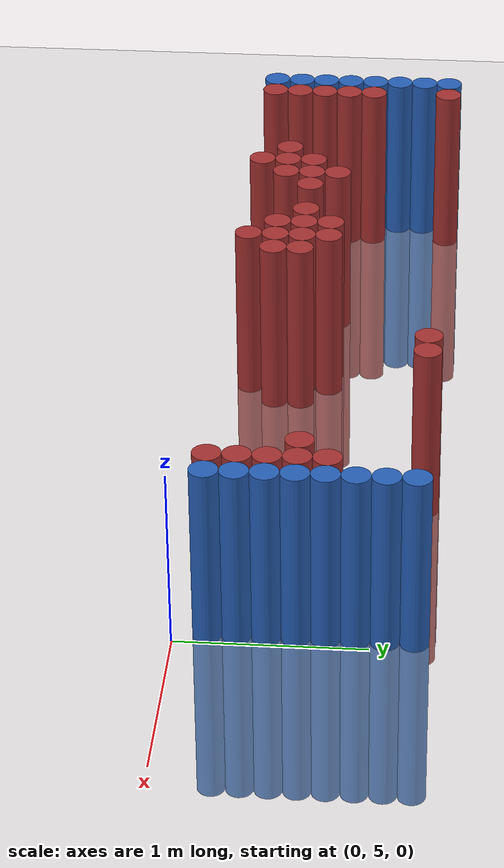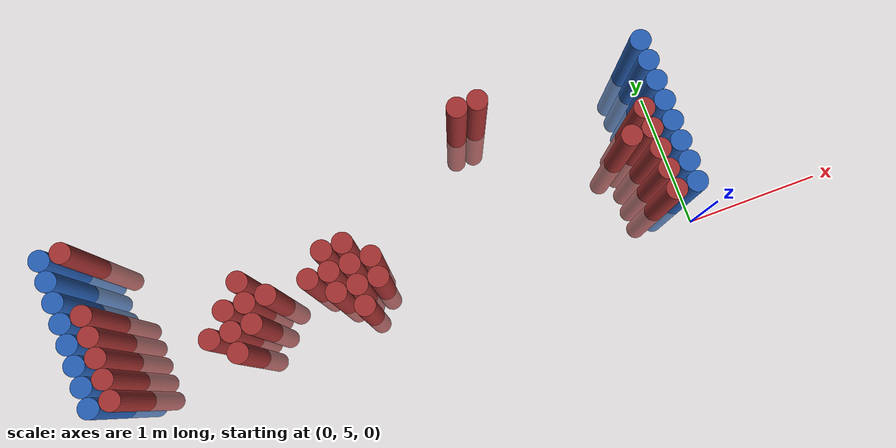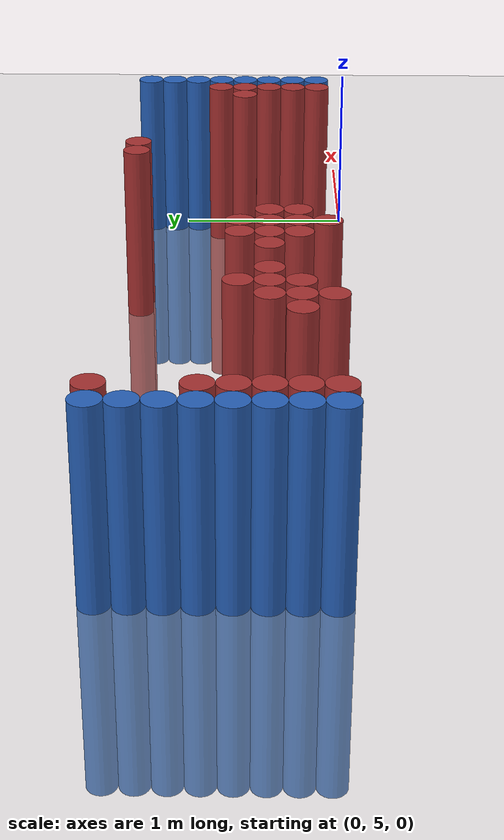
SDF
<sdf version="1.6">
 <world name="default">
  <model name="ground_plane">
   <static>1</static>
   <link name="link">
    <collision name="collision">
     <geometry><plane><normal>0 0 1</normal><size>100 100</size></plane></geometry>
     <surface><friction><ode><mu>100</mu><mu2>50</mu2></ode></friction></surface>
    </collision>
    <visual name="visual">
     <cast_shadows>0</cast_shadows>
     <geometry><plane><normal>0 0 1</normal><size>100 100</size></plane></geometry>
     <material>
      <script><uri>file://media/materials/scripts/gazebo.material</uri><name>Gazebo/Grey</name></script>
     </material>
    </visual>
   </link>
  </model>
  <model name="unit_cylinder_96">
   <static>1</static>
   <pose>-4.425000 5.175000 0.000000 0.000000 0.000000 0.000000</pose>
   <link name="link">
    <inertial>
     <mass>1</mass>
     <inertia><ixx>0.145833</ixx><ixy>0</ixy><ixz>0</ixz><iyy>0.145833</iyy><iyz>0</iyz><izz>0.125</izz></inertia>
    </inertial>
    <collision name="collision">
     <geometry><cylinder><radius>0.075000</radius><length>2</length></cylinder></geometry>
    </collision>
    <visual name="visual">
     <geometry><cylinder><radius>0.075000</radius><length>2</length></cylinder></geometry>
     <material>
      <ambient>0.152000 0.379000 0.720000 1</ambient>
      <diffuse>0.152000 0.379000 0.720000 1</diffuse>
     </material>
     <material>
      <script><name>Gazebo/Grey</name><uri>file://media/materials/scripts/gazebo.material</uri></script>
     </material>
    </visual>
   </link>
  </model>
  <model name="unit_cylinder_97">
   <static>1</static>
   <pose>-4.425000 5.325000 0.000000 0.000000 0.000000 0.000000</pose>
   <link name="link">
    <inertial>
     <mass>1</mass>
     <inertia><ixx>0.145833</ixx><ixy>0</ixy><ixz>0</ixz><iyy>0.145833</iyy><iyz>0</iyz><izz>0.125</izz></inertia>
    </inertial>
    <collision name="collision">
     <geometry><cylinder><radius>0.075000</radius><length>2</length></cylinder></geometry>
    </collision>
    <visual name="visual">
     <geometry><cylinder><radius>0.075000</radius><length>2</length></cylinder></geometry>
     <material>
      <ambient>0.152000 0.379000 0.720000 1</ambient>
      <diffuse>0.152000 0.379000 0.720000 1</diffuse>
     </material>
     <material>
      <script><name>Gazebo/Grey</name><uri>file://media/materials/scripts/gazebo.material</uri></script>
     </material>
    </visual>
   </link>
  </model>
  <model name="unit_cylinder_98">
   <static>1</static>
   <pose>-4.425000 5.475000 0.000000 0.000000 0.000000 0.000000</pose>
   <link name="link">
    <inertial>
     <mass>1</mass>
     <inertia><ixx>0.145833</ixx><ixy>0</ixy><ixz>0</ixz><iyy>0.145833</iyy><iyz>0</iyz><izz>0.125</izz></inertia>
    </inertial>
    <collision name="collision">
     <geometry><cylinder><radius>0.075000</radius><length>2</length></cylinder></geometry>
    </collision>
    <visual name="visual">
     <geometry><cylinder><radius>0.075000</radius><length>2</length></cylinder></geometry>
     <material>
      <ambient>0.152000 0.379000 0.720000 1</ambient>
      <diffuse>0.152000 0.379000 0.720000 1</diffuse>
     </material>
     <material>
      <script><name>Gazebo/Grey</name><uri>file://media/materials/scripts/gazebo.material</uri></script>
     </material>
    </visual>
   </link>
  </model>
  <model name="unit_cylinder_99">
   <static>1</static>
   <pose>-4.425000 5.625000 0.000000 0.000000 0.000000 0.000000</pose>
   <link name="link">
    <inertial>
     <mass>1</mass>
     <inertia><ixx>0.145833</ixx><ixy>0</ixy><ixz>0</ixz><iyy>0.145833</iyy><iyz>0</iyz><izz>0.125</izz></inertia>
    </inertial>
    <collision name="collision">
     <geometry><cylinder><radius>0.075000</radius><length>2</length></cylinder></geometry>
    </collision>
    <visual name="visual">
     <geometry><cylinder><radius>0.075000</radius><length>2</length></cylinder></geometry>
     <material>
      <ambient>0.152000 0.379000 0.720000 1</ambient>
      <diffuse>0.152000 0.379000 0.720000 1</diffuse>
     </material>
     <material>
      <script><name>Gazebo/Grey</name><uri>file://media/materials/scripts/gazebo.material</uri></script>
     </material>
    </visual>
   </link>
  </model>
  <model name="unit_cylinder_100">
   <static>1</static>
   <pose>-4.425000 5.775000 0.000000 0.000000 0.000000 0.000000</pose>
   <link name="link">
    <inertial>
     <mass>1</mass>
     <inertia><ixx>0.145833</ixx><ixy>0</ixy><ixz>0</ixz><iyy>0.145833</iyy><iyz>0</iyz><izz>0.125</izz></inertia>
    </inertial>
    <collision name="collision">
     <geometry><cylinder><radius>0.075000</radius><length>2</length></cylinder></geometry>
    </collision>
    <visual name="visual">
     <geometry><cylinder><radius>0.075000</radius><length>2</length></cylinder></geometry>
     <material>
      <ambient>0.152000 0.379000 0.720000 1</ambient>
      <diffuse>0.152000 0.379000 0.720000 1</diffuse>
     </material>
     <material>
      <script><name>Gazebo/Grey</name><uri>file://media/materials/scripts/gazebo.material</uri></script>
     </material>
    </visual>
   </link>
  </model>
  <model name="unit_cylinder_101">
   <static>1</static>
   <pose>-4.425000 5.925000 0.000000 0.000000 0.000000 0.000000</pose>
   <link name="link">
    <inertial>
     <mass>1</mass>
     <inertia><ixx>0.145833</ixx><ixy>0</ixy><ixz>0</ixz><iyy>0.145833</iyy><iyz>0</iyz><izz>0.125</izz></inertia>
    </inertial>
    <collision name="collision">
     <geometry><cylinder><radius>0.075000</radius><length>2</length></cylinder></geometry>
    </collision>
    <visual name="visual">
     <geometry><cylinder><radius>0.075000</radius><length>2</length></cylinder></geometry>
     <material>
      <ambient>0.152000 0.379000 0.720000 1</ambient>
      <diffuse>0.152000 0.379000 0.720000 1</diffuse>
     </material>
     <material>
      <script><name>Gazebo/Grey</name><uri>file://media/materials/scripts/gazebo.material</uri></script>
     </material>
    </visual>
   </link>
  </model>
  <model name="unit_cylinder_102">
   <static>1</static>
   <pose>-4.425000 6.075000 0.000000 0.000000 0.000000 0.000000</pose>
   <link name="link">
    <inertial>
     <mass>1</mass>
     <inertia><ixx>0.145833</ixx><ixy>0</ixy><ixz>0</ixz><iyy>0.145833</iyy><iyz>0</iyz><izz>0.125</izz></inertia>
    </inertial>
    <collision name="collision">
     <geometry><cylinder><radius>0.075000</radius><length>2</length></cylinder></geometry>
    </collision>
    <visual name="visual">
     <geometry><cylinder><radius>0.075000</radius><length>2</length></cylinder></geometry>
     <material>
      <ambient>0.152000 0.379000 0.720000 1</ambient>
      <diffuse>0.152000 0.379000 0.720000 1</diffuse>
     </material>
     <material>
      <script><name>Gazebo/Grey</name><uri>file://media/materials/scripts/gazebo.material</uri></script>
     </material>
    </visual>
   </link>
  </model>
  <model name="unit_cylinder_103">
   <static>1</static>
   <pose>-4.425000 6.225000 0.000000 0.000000 0.000000 0.000000</pose>
   <link name="link">
    <inertial>
     <mass>1</mass>
     <inertia><ixx>0.145833</ixx><ixy>0</ixy><ixz>0</ixz><iyy>0.145833</iyy><iyz>0</iyz><izz>0.125</izz></inertia>
    </inertial>
    <collision name="collision">
     <geometry><cylinder><radius>0.075000</radius><length>2</length></cylinder></geometry>
    </collision>
    <visual name="visual">
     <geometry><cylinder><radius>0.075000</radius><length>2</length></cylinder></geometry>
     <material>
      <ambient>0.152000 0.379000 0.720000 1</ambient>
      <diffuse>0.152000 0.379000 0.720000 1</diffuse>
     </material>
     <material>
      <script><name>Gazebo/Grey</name><uri>file://media/materials/scripts/gazebo.material</uri></script>
     </material>
    </visual>
   </link>
  </model>
  <model name="unit_cylinder_126">
   <static>1</static>
   <pose>-4.275000 5.175000 0.000000 0.000000 0.000000 0.000000</pose>
   <link name="link">
    <inertial>
     <mass>1</mass>
     <inertia><ixx>0.145833</ixx><ixy>0</ixy><ixz>0</ixz><iyy>0.145833</iyy><iyz>0</iyz><izz>0.125</izz></inertia>
    </inertial>
    <collision name="collision">
     <geometry><cylinder><radius>0.075000</radius><length>2</length></cylinder></geometry>
    </collision>
    <visual name="visual">
     <geometry><cylinder><radius>0.075000</radius><length>2</length></cylinder></geometry>
     <material>
      <ambient>0.648000 0.192000 0.192000 1</ambient>
      <diffuse>0.648000 0.192000 0.192000 1</diffuse>
     </material>
     <material>
      <script><name>Gazebo/Grey</name><uri>file://media/materials/scripts/gazebo.material</uri></script>
     </material>
    </visual>
   </link>
  </model>
  <model name="unit_cylinder_127">
   <static>1</static>
   <pose>-4.275000 5.325000 0.000000 0.000000 0.000000 0.000000</pose>
   <link name="link">
    <inertial>
     <mass>1</mass>
     <inertia><ixx>0.145833</ixx><ixy>0</ixy><ixz>0</ixz><iyy>0.145833</iyy><iyz>0</iyz><izz>0.125</izz></inertia>
    </inertial>
    <collision name="collision">
     <geometry><cylinder><radius>0.075000</radius><length>2</length></cylinder></geometry>
    </collision>
    <visual name="visual">
     <geometry><cylinder><radius>0.075000</radius><length>2</length></cylinder></geometry>
     <material>
      <ambient>0.648000 0.192000 0.192000 1</ambient>
      <diffuse>0.648000 0.192000 0.192000 1</diffuse>
     </material>
     <material>
      <script><name>Gazebo/Grey</name><uri>file://media/materials/scripts/gazebo.material</uri></script>
     </material>
    </visual>
   </link>
  </model>
  <model name="unit_cylinder_128">
   <static>1</static>
   <pose>-4.275000 5.475000 0.000000 0.000000 0.000000 0.000000</pose>
   <link name="link">
    <inertial>
     <mass>1</mass>
     <inertia><ixx>0.145833</ixx><ixy>0</ixy><ixz>0</ixz><iyy>0.145833</iyy><iyz>0</iyz><izz>0.125</izz></inertia>
    </inertial>
    <collision name="collision">
     <geometry><cylinder><radius>0.075000</radius><length>2</length></cylinder></geometry>
    </collision>
    <visual name="visual">
     <geometry><cylinder><radius>0.075000</radius><length>2</length></cylinder></geometry>
     <material>
      <ambient>0.648000 0.192000 0.192000 1</ambient>
      <diffuse>0.648000 0.192000 0.192000 1</diffuse>
     </material>
     <material>
      <script><name>Gazebo/Grey</name><uri>file://media/materials/scripts/gazebo.material</uri></script>
     </material>
    </visual>
   </link>
  </model>
  <model name="unit_cylinder_129">
   <static>1</static>
   <pose>-4.275000 5.625000 0.000000 0.000000 0.000000 0.000000</pose>
   <link name="link">
    <inertial>
     <mass>1</mass>
     <inertia><ixx>0.145833</ixx><ixy>0</ixy><ixz>0</ixz><iyy>0.145833</iyy><iyz>0</iyz><izz>0.125</izz></inertia>
    </inertial>
    <collision name="collision">
     <geometry><cylinder><radius>0.075000</radius><length>2</length></cylinder></geometry>
    </collision>
    <visual name="visual">
     <geometry><cylinder><radius>0.075000</radius><length>2</length></cylinder></geometry>
     <material>
      <ambient>0.648000 0.192000 0.192000 1</ambient>
      <diffuse>0.648000 0.192000 0.192000 1</diffuse>
     </material>
     <material>
      <script><name>Gazebo/Grey</name><uri>file://media/materials/scripts/gazebo.material</uri></script>
     </material>
    </visual>
   </link>
  </model>
  <model name="unit_cylinder_130">
   <static>1</static>
   <pose>-4.275000 5.775000 0.000000 0.000000 0.000000 0.000000</pose>
   <link name="link">
    <inertial>
     <mass>1</mass>
     <inertia><ixx>0.145833</ixx><ixy>0</ixy><ixz>0</ixz><iyy>0.145833</iyy><iyz>0</iyz><izz>0.125</izz></inertia>
    </inertial>
    <collision name="collision">
     <geometry><cylinder><radius>0.075000</radius><length>2</length></cylinder></geometry>
    </collision>
    <visual name="visual">
     <geometry><cylinder><radius>0.075000</radius><length>2</length></cylinder></geometry>
     <material>
      <ambient>0.648000 0.192000 0.192000 1</ambient>
      <diffuse>0.648000 0.192000 0.192000 1</diffuse>
     </material>
     <material>
      <script><name>Gazebo/Grey</name><uri>file://media/materials/scripts/gazebo.material</uri></script>
     </material>
    </visual>
   </link>
  </model>
  <model name="unit_cylinder_131">
   <static>1</static>
   <pose>-4.275000 6.225000 0.000000 0.000000 0.000000 0.000000</pose>
   <link name="link">
    <inertial>
     <mass>1</mass>
     <inertia><ixx>0.145833</ixx><ixy>0</ixy><ixz>0</ixz><iyy>0.145833</iyy><iyz>0</iyz><izz>0.125</izz></inertia>
    </inertial>
    <collision name="collision">
     <geometry><cylinder><radius>0.075000</radius><length>2</length></cylinder></geometry>
    </collision>
    <visual name="visual">
     <geometry><cylinder><radius>0.075000</radius><length>2</length></cylinder></geometry>
     <material>
      <ambient>0.648000 0.192000 0.192000 1</ambient>
      <diffuse>0.648000 0.192000 0.192000 1</diffuse>
     </material>
     <material>
      <script><name>Gazebo/Grey</name><uri>file://media/materials/scripts/gazebo.material</uri></script>
     </material>
    </visual>
   </link>
  </model>
  <model name="unit_cylinder_150">
   <static>1</static>
   <pose>-3.525000 5.325000 0.000000 0.000000 0.000000 0.000000</pose>
   <link name="link">
    <inertial>
     <mass>1</mass>
     <inertia><ixx>0.145833</ixx><ixy>0</ixy><ixz>0</ixz><iyy>0.145833</iyy><iyz>0</iyz><izz>0.125</izz></inertia>
    </inertial>
    <collision name="collision">
     <geometry><cylinder><radius>0.075000</radius><length>2</length></cylinder></geometry>
    </collision>
    <visual name="visual">
     <geometry><cylinder><radius>0.075000</radius><length>2</length></cylinder></geometry>
     <material>
      <ambient>0.648000 0.192000 0.192000 1</ambient>
      <diffuse>0.648000 0.192000 0.192000 1</diffuse>
     </material>
     <material>
      <script><name>Gazebo/Grey</name><uri>file://media/materials/scripts/gazebo.material</uri></script>
     </material>
    </visual>
   </link>
  </model>
  <model name="unit_cylinder_151">
   <static>1</static>
   <pose>-3.375000 5.175000 0.000000 0.000000 0.000000 0.000000</pose>
   <link name="link">
    <inertial>
     <mass>1</mass>
     <inertia><ixx>0.145833</ixx><ixy>0</ixy><ixz>0</ixz><iyy>0.145833</iyy><iyz>0</iyz><izz>0.125</izz></inertia>
    </inertial>
    <collision name="collision">
     <geometry><cylinder><radius>0.075000</radius><length>2</length></cylinder></geometry>
    </collision>
    <visual name="visual">
     <geometry><cylinder><radius>0.075000</radius><length>2</length></cylinder></geometry>
     <material>
      <ambient>0.648000 0.192000 0.192000 1</ambient>
      <diffuse>0.648000 0.192000 0.192000 1</diffuse>
     </material>
     <material>
      <script><name>Gazebo/Grey</name><uri>file://media/materials/scripts/gazebo.material</uri></script>
     </material>
    </visual>
   </link>
  </model>
  <model name="unit_cylinder_152">
   <static>1</static>
   <pose>-3.375000 5.325000 0.000000 0.000000 0.000000 0.000000</pose>
   <link name="link">
    <inertial>
     <mass>1</mass>
     <inertia><ixx>0.145833</ixx><ixy>0</ixy><ixz>0</ixz><iyy>0.145833</iyy><iyz>0</iyz><izz>0.125</izz></inertia>
    </inertial>
    <collision name="collision">
     <geometry><cylinder><radius>0.075000</radius><length>2</length></cylinder></geometry>
    </collision>
    <visual name="visual">
     <geometry><cylinder><radius>0.075000</radius><length>2</length></cylinder></geometry>
     <material>
      <ambient>0.648000 0.192000 0.192000 1</ambient>
      <diffuse>0.648000 0.192000 0.192000 1</diffuse>
     </material>
     <material>
      <script><name>Gazebo/Grey</name><uri>file://media/materials/scripts/gazebo.material</uri></script>
     </material>
    </visual>
   </link>
  </model>
  <model name="unit_cylinder_153">
   <static>1</static>
   <pose>-3.375000 5.475000 0.000000 0.000000 0.000000 0.000000</pose>
   <link name="link">
    <inertial>
     <mass>1</mass>
     <inertia><ixx>0.145833</ixx><ixy>0</ixy><ixz>0</ixz><iyy>0.145833</iyy><iyz>0</iyz><izz>0.125</izz></inertia>
    </inertial>
    <collision name="collision">
     <geometry><cylinder><radius>0.075000</radius><length>2</length></cylinder></geometry>
    </collision>
    <visual name="visual">
     <geometry><cylinder><radius>0.075000</radius><length>2</length></cylinder></geometry>
     <material>
      <ambient>0.648000 0.192000 0.192000 1</ambient>
      <diffuse>0.648000 0.192000 0.192000 1</diffuse>
     </material>
     <material>
      <script><name>Gazebo/Grey</name><uri>file://media/materials/scripts/gazebo.material</uri></script>
     </material>
    </visual>
   </link>
  </model>
  <model name="unit_cylinder_157">
   <static>1</static>
   <pose>-3.225000 5.325000 0.000000 0.000000 0.000000 0.000000</pose>
   <link name="link">
    <inertial>
     <mass>1</mass>
     <inertia><ixx>0.145833</ixx><ixy>0</ixy><ixz>0</ixz><iyy>0.145833</iyy><iyz>0</iyz><izz>0.125</izz></inertia>
    </inertial>
    <collision name="collision">
     <geometry><cylinder><radius>0.075000</radius><length>2</length></cylinder></geometry>
    </collision>
    <visual name="visual">
     <geometry><cylinder><radius>0.075000</radius><length>2</length></cylinder></geometry>
     <material>
      <ambient>0.648000 0.192000 0.192000 1</ambient>
      <diffuse>0.648000 0.192000 0.192000 1</diffuse>
     </material>
     <material>
      <script><name>Gazebo/Grey</name><uri>file://media/materials/scripts/gazebo.material</uri></script>
     </material>
    </visual>
   </link>
  </model>
  <model name="unit_cylinder_158">
   <static>1</static>
   <pose>-3.225000 5.475000 0.000000 0.000000 0.000000 0.000000</pose>
   <link name="link">
    <inertial>
     <mass>1</mass>
     <inertia><ixx>0.145833</ixx><ixy>0</ixy><ixz>0</ixz><iyy>0.145833</iyy><iyz>0</iyz><izz>0.125</izz></inertia>
    </inertial>
    <collision name="collision">
     <geometry><cylinder><radius>0.075000</radius><length>2</length></cylinder></geometry>
    </collision>
    <visual name="visual">
     <geometry><cylinder><radius>0.075000</radius><length>2</length></cylinder></geometry>
     <material>
      <ambient>0.648000 0.192000 0.192000 1</ambient>
      <diffuse>0.648000 0.192000 0.192000 1</diffuse>
     </material>
     <material>
      <script><name>Gazebo/Grey</name><uri>file://media/materials/scripts/gazebo.material</uri></script>
     </material>
    </visual>
   </link>
  </model>
  <model name="unit_cylinder_159">
   <static>1</static>
   <pose>-3.225000 5.625000 0.000000 0.000000 0.000000 0.000000</pose>
   <link name="link">
    <inertial>
     <mass>1</mass>
     <inertia><ixx>0.145833</ixx><ixy>0</ixy><ixz>0</ixz><iyy>0.145833</iyy><iyz>0</iyz><izz>0.125</izz></inertia>
    </inertial>
    <collision name="collision">
     <geometry><cylinder><radius>0.075000</radius><length>2</length></cylinder></geometry>
    </collision>
    <visual name="visual">
     <geometry><cylinder><radius>0.075000</radius><length>2</length></cylinder></geometry>
     <material>
      <ambient>0.648000 0.192000 0.192000 1</ambient>
      <diffuse>0.648000 0.192000 0.192000 1</diffuse>
     </material>
     <material>
      <script><name>Gazebo/Grey</name><uri>file://media/materials/scripts/gazebo.material</uri></script>
     </material>
    </visual>
   </link>
  </model>
  <model name="unit_cylinder_164">
   <static>1</static>
   <pose>-3.075000 5.475000 0.000000 0.000000 0.000000 0.000000</pose>
   <link name="link">
    <inertial>
     <mass>1</mass>
     <inertia><ixx>0.145833</ixx><ixy>0</ixy><ixz>0</ixz><iyy>0.145833</iyy><iyz>0</iyz><izz>0.125</izz></inertia>
    </inertial>
    <collision name="collision">
     <geometry><cylinder><radius>0.075000</radius><length>2</length></cylinder></geometry>
    </collision>
    <visual name="visual">
     <geometry><cylinder><radius>0.075000</radius><length>2</length></cylinder></geometry>
     <material>
      <ambient>0.648000 0.192000 0.192000 1</ambient>
      <diffuse>0.648000 0.192000 0.192000 1</diffuse>
     </material>
     <material>
      <script><name>Gazebo/Grey</name><uri>file://media/materials/scripts/gazebo.material</uri></script>
     </material>
    </visual>
   </link>
  </model>
  <model name="unit_cylinder_166">
   <static>1</static>
   <pose>-2.775000 5.475000 0.000000 0.000000 0.000000 0.000000</pose>
   <link name="link">
    <inertial>
     <mass>1</mass>
     <inertia><ixx>0.145833</ixx><ixy>0</ixy><ixz>0</ixz><iyy>0.145833</iyy><iyz>0</iyz><izz>0.125</izz></inertia>
    </inertial>
    <collision name="collision">
     <geometry><cylinder><radius>0.075000</radius><length>2</length></cylinder></geometry>
    </collision>
    <visual name="visual">
     <geometry><cylinder><radius>0.075000</radius><length>2</length></cylinder></geometry>
     <material>
      <ambient>0.648000 0.192000 0.192000 1</ambient>
      <diffuse>0.648000 0.192000 0.192000 1</diffuse>
     </material>
     <material>
      <script><name>Gazebo/Grey</name><uri>file://media/materials/scripts/gazebo.material</uri></script>
     </material>
    </visual>
   </link>
  </model>
  <model name="unit_cylinder_167">
   <static>1</static>
   <pose>-2.625000 5.325000 0.000000 0.000000 0.000000 0.000000</pose>
   <link name="link">
    <inertial>
     <mass>1</mass>
     <inertia><ixx>0.145833</ixx><ixy>0</ixy><ixz>0</ixz><iyy>0.145833</iyy><iyz>0</iyz><izz>0.125</izz></inertia>
    </inertial>
    <collision name="collision">
     <geometry><cylinder><radius>0.075000</radius><length>2</length></cylinder></geometry>
    </collision>
    <visual name="visual">
     <geometry><cylinder><radius>0.075000</radius><length>2</length></cylinder></geometry>
     <material>
      <ambient>0.648000 0.192000 0.192000 1</ambient>
      <diffuse>0.648000 0.192000 0.192000 1</diffuse>
     </material>
     <material>
      <script><name>Gazebo/Grey</name><uri>file://media/materials/scripts/gazebo.material</uri></script>
     </material>
    </visual>
   </link>
  </model>
  <model name="unit_cylinder_168">
   <static>1</static>
   <pose>-2.625000 5.475000 0.000000 0.000000 0.000000 0.000000</pose>
   <link name="link">
    <inertial>
     <mass>1</mass>
     <inertia><ixx>0.145833</ixx><ixy>0</ixy><ixz>0</ixz><iyy>0.145833</iyy><iyz>0</iyz><izz>0.125</izz></inertia>
    </inertial>
    <collision name="collision">
     <geometry><cylinder><radius>0.075000</radius><length>2</length></cylinder></geometry>
    </collision>
    <visual name="visual">
     <geometry><cylinder><radius>0.075000</radius><length>2</length></cylinder></geometry>
     <material>
      <ambient>0.648000 0.192000 0.192000 1</ambient>
      <diffuse>0.648000 0.192000 0.192000 1</diffuse>
     </material>
     <material>
      <script><name>Gazebo/Grey</name><uri>file://media/materials/scripts/gazebo.material</uri></script>
     </material>
    </visual>
   </link>
  </model>
  <model name="unit_cylinder_169">
   <static>1</static>
   <pose>-2.625000 5.625000 0.000000 0.000000 0.000000 0.000000</pose>
   <link name="link">
    <inertial>
     <mass>1</mass>
     <inertia><ixx>0.145833</ixx><ixy>0</ixy><ixz>0</ixz><iyy>0.145833</iyy><iyz>0</iyz><izz>0.125</izz></inertia>
    </inertial>
    <collision name="collision">
     <geometry><cylinder><radius>0.075000</radius><length>2</length></cylinder></geometry>
    </collision>
    <visual name="visual">
     <geometry><cylinder><radius>0.075000</radius><length>2</length></cylinder></geometry>
     <material>
      <ambient>0.648000 0.192000 0.192000 1</ambient>
      <diffuse>0.648000 0.192000 0.192000 1</diffuse>
     </material>
     <material>
      <script><name>Gazebo/Grey</name><uri>file://media/materials/scripts/gazebo.material</uri></script>
     </material>
    </visual>
   </link>
  </model>
  <model name="unit_cylinder_172">
   <static>1</static>
   <pose>-2.475000 5.175000 0.000000 0.000000 0.000000 0.000000</pose>
   <link name="link">
    <inertial>
     <mass>1</mass>
     <inertia><ixx>0.145833</ixx><ixy>0</ixy><ixz>0</ixz><iyy>0.145833</iyy><iyz>0</iyz><izz>0.125</izz></inertia>
    </inertial>
    <collision name="collision">
     <geometry><cylinder><radius>0.075000</radius><length>2</length></cylinder></geometry>
    </collision>
    <visual name="visual">
     <geometry><cylinder><radius>0.075000</radius><length>2</length></cylinder></geometry>
     <material>
      <ambient>0.648000 0.192000 0.192000 1</ambient>
      <diffuse>0.648000 0.192000 0.192000 1</diffuse>
     </material>
     <material>
      <script><name>Gazebo/Grey</name><uri>file://media/materials/scripts/gazebo.material</uri></script>
     </material>
    </visual>
   </link>
  </model>
  <model name="unit_cylinder_173">
   <static>1</static>
   <pose>-2.475000 5.325000 0.000000 0.000000 0.000000 0.000000</pose>
   <link name="link">
    <inertial>
     <mass>1</mass>
     <inertia><ixx>0.145833</ixx><ixy>0</ixy><ixz>0</ixz><iyy>0.145833</iyy><iyz>0</iyz><izz>0.125</izz></inertia>
    </inertial>
    <collision name="collision">
     <geometry><cylinder><radius>0.075000</radius><length>2</length></cylinder></geometry>
    </collision>
    <visual name="visual">
     <geometry><cylinder><radius>0.075000</radius><length>2</length></cylinder></geometry>
     <material>
      <ambient>0.648000 0.192000 0.192000 1</ambient>
      <diffuse>0.648000 0.192000 0.192000 1</diffuse>
     </material>
     <material>
      <script><name>Gazebo/Grey</name><uri>file://media/materials/scripts/gazebo.material</uri></script>
     </material>
    </visual>
   </link>
  </model>
  <model name="unit_cylinder_174">
   <static>1</static>
   <pose>-2.475000 5.475000 0.000000 0.000000 0.000000 0.000000</pose>
   <link name="link">
    <inertial>
     <mass>1</mass>
     <inertia><ixx>0.145833</ixx><ixy>0</ixy><ixz>0</ixz><iyy>0.145833</iyy><iyz>0</iyz><izz>0.125</izz></inertia>
    </inertial>
    <collision name="collision">
     <geometry><cylinder><radius>0.075000</radius><length>2</length></cylinder></geometry>
    </collision>
    <visual name="visual">
     <geometry><cylinder><radius>0.075000</radius><length>2</length></cylinder></geometry>
     <material>
      <ambient>0.648000 0.192000 0.192000 1</ambient>
      <diffuse>0.648000 0.192000 0.192000 1</diffuse>
     </material>
     <material>
      <script><name>Gazebo/Grey</name><uri>file://media/materials/scripts/gazebo.material</uri></script>
     </material>
    </visual>
   </link>
  </model>
  <model name="unit_cylinder_175">
   <static>1</static>
   <pose>-2.475000 5.625000 0.000000 0.000000 0.000000 0.000000</pose>
   <link name="link">
    <inertial>
     <mass>1</mass>
     <inertia><ixx>0.145833</ixx><ixy>0</ixy><ixz>0</ixz><iyy>0.145833</iyy><iyz>0</iyz><izz>0.125</izz></inertia>
    </inertial>
    <collision name="collision">
     <geometry><cylinder><radius>0.075000</radius><length>2</length></cylinder></geometry>
    </collision>
    <visual name="visual">
     <geometry><cylinder><radius>0.075000</radius><length>2</length></cylinder></geometry>
     <material>
      <ambient>0.648000 0.192000 0.192000 1</ambient>
      <diffuse>0.648000 0.192000 0.192000 1</diffuse>
     </material>
     <material>
      <script><name>Gazebo/Grey</name><uri>file://media/materials/scripts/gazebo.material</uri></script>
     </material>
    </visual>
   </link>
  </model>
  <model name="unit_cylinder_180">
   <static>1</static>
   <pose>-2.325000 5.325000 0.000000 0.000000 0.000000 0.000000</pose>
   <link name="link">
    <inertial>
     <mass>1</mass>
     <inertia><ixx>0.145833</ixx><ixy>0</ixy><ixz>0</ixz><iyy>0.145833</iyy><iyz>0</iyz><izz>0.125</izz></inertia>
    </inertial>
    <collision name="collision">
     <geometry><cylinder><radius>0.075000</radius><length>2</length></cylinder></geometry>
    </collision>
    <visual name="visual">
     <geometry><cylinder><radius>0.075000</radius><length>2</length></cylinder></geometry>
     <material>
      <ambient>0.648000 0.192000 0.192000 1</ambient>
      <diffuse>0.648000 0.192000 0.192000 1</diffuse>
     </material>
     <material>
      <script><name>Gazebo/Grey</name><uri>file://media/materials/scripts/gazebo.material</uri></script>
     </material>
    </visual>
   </link>
  </model>
  <model name="unit_cylinder_181">
   <static>1</static>
   <pose>-2.325000 5.475000 0.000000 0.000000 0.000000 0.000000</pose>
   <link name="link">
    <inertial>
     <mass>1</mass>
     <inertia><ixx>0.145833</ixx><ixy>0</ixy><ixz>0</ixz><iyy>0.145833</iyy><iyz>0</iyz><izz>0.125</izz></inertia>
    </inertial>
    <collision name="collision">
     <geometry><cylinder><radius>0.075000</radius><length>2</length></cylinder></geometry>
    </collision>
    <visual name="visual">
     <geometry><cylinder><radius>0.075000</radius><length>2</length></cylinder></geometry>
     <material>
      <ambient>0.648000 0.192000 0.192000 1</ambient>
      <diffuse>0.648000 0.192000 0.192000 1</diffuse>
     </material>
     <material>
      <script><name>Gazebo/Grey</name><uri>file://media/materials/scripts/gazebo.material</uri></script>
     </material>
    </visual>
   </link>
  </model>
  <model name="unit_cylinder_183">
   <static>1</static>
   <pose>-1.425000 6.225000 0.000000 0.000000 0.000000 0.000000</pose>
   <link name="link">
    <inertial>
     <mass>1</mass>
     <inertia><ixx>0.145833</ixx><ixy>0</ixy><ixz>0</ixz><iyy>0.145833</iyy><iyz>0</iyz><izz>0.125</izz></inertia>
    </inertial>
    <collision name="collision">
     <geometry><cylinder><radius>0.075000</radius><length>2</length></cylinder></geometry>
    </collision>
    <visual name="visual">
     <geometry><cylinder><radius>0.075000</radius><length>2</length></cylinder></geometry>
     <material>
      <ambient>0.648000 0.192000 0.192000 1</ambient>
      <diffuse>0.648000 0.192000 0.192000 1</diffuse>
     </material>
     <material>
      <script><name>Gazebo/Grey</name><uri>file://media/materials/scripts/gazebo.material</uri></script>
     </material>
    </visual>
   </link>
  </model>
  <model name="unit_cylinder_184">
   <static>1</static>
   <pose>-1.275000 6.225000 0.000000 0.000000 0.000000 0.000000</pose>
   <link name="link">
    <inertial>
     <mass>1</mass>
     <inertia><ixx>0.145833</ixx><ixy>0</ixy><ixz>0</ixz><iyy>0.145833</iyy><iyz>0</iyz><izz>0.125</izz></inertia>
    </inertial>
    <collision name="collision">
     <geometry><cylinder><radius>0.075000</radius><length>2</length></cylinder></geometry>
    </collision>
    <visual name="visual">
     <geometry><cylinder><radius>0.075000</radius><length>2</length></cylinder></geometry>
     <material>
      <ambient>0.648000 0.192000 0.192000 1</ambient>
      <diffuse>0.648000 0.192000 0.192000 1</diffuse>
     </material>
     <material>
      <script><name>Gazebo/Grey</name><uri>file://media/materials/scripts/gazebo.material</uri></script>
     </material>
    </visual>
   </link>
  </model>
  <model name="unit_cylinder_190">
   <static>1</static>
   <pose>-0.375000 5.625000 0.000000 0.000000 0.000000 0.000000</pose>
   <link name="link">
    <inertial>
     <mass>1</mass>
     <inertia><ixx>0.145833</ixx><ixy>0</ixy><ixz>0</ixz><iyy>0.145833</iyy><iyz>0</iyz><izz>0.125</izz></inertia>
    </inertial>
    <collision name="collision">
     <geometry><cylinder><radius>0.075000</radius><length>2</length></cylinder></geometry>
    </collision>
    <visual name="visual">
     <geometry><cylinder><radius>0.075000</radius><length>2</length></cylinder></geometry>
     <material>
      <ambient>0.648000 0.192000 0.192000 1</ambient>
      <diffuse>0.648000 0.192000 0.192000 1</diffuse>
     </material>
     <material>
      <script><name>Gazebo/Grey</name><uri>file://media/materials/scripts/gazebo.material</uri></script>
     </material>
    </visual>
   </link>
  </model>
  <model name="unit_cylinder_196">
   <static>1</static>
   <pose>-0.225000 5.175000 0.000000 0.000000 0.000000 0.000000</pose>
   <link name="link">
    <inertial>
     <mass>1</mass>
     <inertia><ixx>0.145833</ixx><ixy>0</ixy><ixz>0</ixz><iyy>0.145833</iyy><iyz>0</iyz><izz>0.125</izz></inertia>
    </inertial>
    <collision name="collision">
     <geometry><cylinder><radius>0.075000</radius><length>2</length></cylinder></geometry>
    </collision>
    <visual name="visual">
     <geometry><cylinder><radius>0.075000</radius><length>2</length></cylinder></geometry>
     <material>
      <ambient>0.648000 0.192000 0.192000 1</ambient>
      <diffuse>0.648000 0.192000 0.192000 1</diffuse>
     </material>
     <material>
      <script><name>Gazebo/Grey</name><uri>file://media/materials/scripts/gazebo.material</uri></script>
     </material>
    </visual>
   </link>
  </model>
  <model name="unit_cylinder_197">
   <static>1</static>
   <pose>-0.225000 5.325000 0.000000 0.000000 0.000000 0.000000</pose>
   <link name="link">
    <inertial>
     <mass>1</mass>
     <inertia><ixx>0.145833</ixx><ixy>0</ixy><ixz>0</ixz><iyy>0.145833</iyy><iyz>0</iyz><izz>0.125</izz></inertia>
    </inertial>
    <collision name="collision">
     <geometry><cylinder><radius>0.075000</radius><length>2</length></cylinder></geometry>
    </collision>
    <visual name="visual">
     <geometry><cylinder><radius>0.075000</radius><length>2</length></cylinder></geometry>
     <material>
      <ambient>0.648000 0.192000 0.192000 1</ambient>
      <diffuse>0.648000 0.192000 0.192000 1</diffuse>
     </material>
     <material>
      <script><name>Gazebo/Grey</name><uri>file://media/materials/scripts/gazebo.material</uri></script>
     </material>
    </visual>
   </link>
  </model>
  <model name="unit_cylinder_198">
   <static>1</static>
   <pose>-0.225000 5.475000 0.000000 0.000000 0.000000 0.000000</pose>
   <link name="link">
    <inertial>
     <mass>1</mass>
     <inertia><ixx>0.145833</ixx><ixy>0</ixy><ixz>0</ixz><iyy>0.145833</iyy><iyz>0</iyz><izz>0.125</izz></inertia>
    </inertial>
    <collision name="collision">
     <geometry><cylinder><radius>0.075000</radius><length>2</length></cylinder></geometry>
    </collision>
    <visual name="visual">
     <geometry><cylinder><radius>0.075000</radius><length>2</length></cylinder></geometry>
     <material>
      <ambient>0.648000 0.192000 0.192000 1</ambient>
      <diffuse>0.648000 0.192000 0.192000 1</diffuse>
     </material>
     <material>
      <script><name>Gazebo/Grey</name><uri>file://media/materials/scripts/gazebo.material</uri></script>
     </material>
    </visual>
   </link>
  </model>
  <model name="unit_cylinder_199">
   <static>1</static>
   <pose>-0.225000 5.625000 0.000000 0.000000 0.000000 0.000000</pose>
   <link name="link">
    <inertial>
     <mass>1</mass>
     <inertia><ixx>0.145833</ixx><ixy>0</ixy><ixz>0</ixz><iyy>0.145833</iyy><iyz>0</iyz><izz>0.125</izz></inertia>
    </inertial>
    <collision name="collision">
     <geometry><cylinder><radius>0.075000</radius><length>2</length></cylinder></geometry>
    </collision>
    <visual name="visual">
     <geometry><cylinder><radius>0.075000</radius><length>2</length></cylinder></geometry>
     <material>
      <ambient>0.648000 0.192000 0.192000 1</ambient>
      <diffuse>0.648000 0.192000 0.192000 1</diffuse>
     </material>
     <material>
      <script><name>Gazebo/Grey</name><uri>file://media/materials/scripts/gazebo.material</uri></script>
     </material>
    </visual>
   </link>
  </model>
  <model name="unit_cylinder_200">
   <static>1</static>
   <pose>-0.225000 5.775000 0.000000 0.000000 0.000000 0.000000</pose>
   <link name="link">
    <inertial>
     <mass>1</mass>
     <inertia><ixx>0.145833</ixx><ixy>0</ixy><ixz>0</ixz><iyy>0.145833</iyy><iyz>0</iyz><izz>0.125</izz></inertia>
    </inertial>
    <collision name="collision">
     <geometry><cylinder><radius>0.075000</radius><length>2</length></cylinder></geometry>
    </collision>
    <visual name="visual">
     <geometry><cylinder><radius>0.075000</radius><length>2</length></cylinder></geometry>
     <material>
      <ambient>0.648000 0.192000 0.192000 1</ambient>
      <diffuse>0.648000 0.192000 0.192000 1</diffuse>
     </material>
     <material>
      <script><name>Gazebo/Grey</name><uri>file://media/materials/scripts/gazebo.material</uri></script>
     </material>
    </visual>
   </link>
  </model>
  <model name="unit_cylinder_210">
   <static>1</static>
   <pose>-0.075000 5.175000 0.000000 0.000000 0.000000 0.000000</pose>
   <link name="link">
    <inertial>
     <mass>1</mass>
     <inertia><ixx>0.145833</ixx><ixy>0</ixy><ixz>0</ixz><iyy>0.145833</iyy><iyz>0</iyz><izz>0.125</izz></inertia>
    </inertial>
    <collision name="collision">
     <geometry><cylinder><radius>0.075000</radius><length>2</length></cylinder></geometry>
    </collision>
    <visual name="visual">
     <geometry><cylinder><radius>0.075000</radius><length>2</length></cylinder></geometry>
     <material>
      <ambient>0.152000 0.379000 0.720000 1</ambient>
      <diffuse>0.152000 0.379000 0.720000 1</diffuse>
     </material>
     <material>
      <script><name>Gazebo/Grey</name><uri>file://media/materials/scripts/gazebo.material</uri></script>
     </material>
    </visual>
   </link>
  </model>
  <model name="unit_cylinder_211">
   <static>1</static>
   <pose>-0.075000 5.325000 0.000000 0.000000 0.000000 0.000000</pose>
   <link name="link">
    <inertial>
     <mass>1</mass>
     <inertia><ixx>0.145833</ixx><ixy>0</ixy><ixz>0</ixz><iyy>0.145833</iyy><iyz>0</iyz><izz>0.125</izz></inertia>
    </inertial>
    <collision name="collision">
     <geometry><cylinder><radius>0.075000</radius><length>2</length></cylinder></geometry>
    </collision>
    <visual name="visual">
     <geometry><cylinder><radius>0.075000</radius><length>2</length></cylinder></geometry>
     <material>
      <ambient>0.152000 0.379000 0.720000 1</ambient>
      <diffuse>0.152000 0.379000 0.720000 1</diffuse>
     </material>
     <material>
      <script><name>Gazebo/Grey</name><uri>file://media/materials/scripts/gazebo.material</uri></script>
     </material>
    </visual>
   </link>
  </model>
  <model name="unit_cylinder_212">
   <static>1</static>
   <pose>-0.075000 5.475000 0.000000 0.000000 0.000000 0.000000</pose>
   <link name="link">
    <inertial>
     <mass>1</mass>
     <inertia><ixx>0.145833</ixx><ixy>0</ixy><ixz>0</ixz><iyy>0.145833</iyy><iyz>0</iyz><izz>0.125</izz></inertia>
    </inertial>
    <collision name="collision">
     <geometry><cylinder><radius>0.075000</radius><length>2</length></cylinder></geometry>
    </collision>
    <visual name="visual">
     <geometry><cylinder><radius>0.075000</radius><length>2</length></cylinder></geometry>
     <material>
      <ambient>0.152000 0.379000 0.720000 1</ambient>
      <diffuse>0.152000 0.379000 0.720000 1</diffuse>
     </material>
     <material>
      <script><name>Gazebo/Grey</name><uri>file://media/materials/scripts/gazebo.material</uri></script>
     </material>
    </visual>
   </link>
  </model>
  <model name="unit_cylinder_213">
   <static>1</static>
   <pose>-0.075000 5.625000 0.000000 0.000000 0.000000 0.000000</pose>
   <link name="link">
    <inertial>
     <mass>1</mass>
     <inertia><ixx>0.145833</ixx><ixy>0</ixy><ixz>0</ixz><iyy>0.145833</iyy><iyz>0</iyz><izz>0.125</izz></inertia>
    </inertial>
    <collision name="collision">
     <geometry><cylinder><radius>0.075000</radius><length>2</length></cylinder></geometry>
    </collision>
    <visual name="visual">
     <geometry><cylinder><radius>0.075000</radius><length>2</length></cylinder></geometry>
     <material>
      <ambient>0.152000 0.379000 0.720000 1</ambient>
      <diffuse>0.152000 0.379000 0.720000 1</diffuse>
     </material>
     <material>
      <script><name>Gazebo/Grey</name><uri>file://media/materials/scripts/gazebo.material</uri></script>
     </material>
    </visual>
   </link>
  </model>
  <model name="unit_cylinder_214">
   <static>1</static>
   <pose>-0.075000 5.775000 0.000000 0.000000 0.000000 0.000000</pose>
   <link name="link">
    <inertial>
     <mass>1</mass>
     <inertia><ixx>0.145833</ixx><ixy>0</ixy><ixz>0</ixz><iyy>0.145833</iyy><iyz>0</iyz><izz>0.125</izz></inertia>
    </inertial>
    <collision name="collision">
     <geometry><cylinder><radius>0.075000</radius><length>2</length></cylinder></geometry>
    </collision>
    <visual name="visual">
     <geometry><cylinder><radius>0.075000</radius><length>2</length></cylinder></geometry>
     <material>
      <ambient>0.152000 0.379000 0.720000 1</ambient>
      <diffuse>0.152000 0.379000 0.720000 1</diffuse>
     </material>
     <material>
      <script><name>Gazebo/Grey</name><uri>file://media/materials/scripts/gazebo.material</uri></script>
     </material>
    </visual>
   </link>
  </model>
  <model name="unit_cylinder_215">
   <static>1</static>
   <pose>-0.075000 5.925000 0.000000 0.000000 0.000000 0.000000</pose>
   <link name="link">
    <inertial>
     <mass>1</mass>
     <inertia><ixx>0.145833</ixx><ixy>0</ixy><ixz>0</ixz><iyy>0.145833</iyy><iyz>0</iyz><izz>0.125</izz></inertia>
    </inertial>
    <collision name="collision">
     <geometry><cylinder><radius>0.075000</radius><length>2</length></cylinder></geometry>
    </collision>
    <visual name="visual">
     <geometry><cylinder><radius>0.075000</radius><length>2</length></cylinder></geometry>
     <material>
      <ambient>0.152000 0.379000 0.720000 1</ambient>
      <diffuse>0.152000 0.379000 0.720000 1</diffuse>
     </material>
     <material>
      <script><name>Gazebo/Grey</name><uri>file://media/materials/scripts/gazebo.material</uri></script>
     </material>
    </visual>
   </link>
  </model>
  <model name="unit_cylinder_216">
   <static>1</static>
   <pose>-0.075000 6.075000 0.000000 0.000000 0.000000 0.000000</pose>
   <link name="link">
    <inertial>
     <mass>1</mass>
     <inertia><ixx>0.145833</ixx><ixy>0</ixy><ixz>0</ixz><iyy>0.145833</iyy><iyz>0</iyz><izz>0.125</izz></inertia>
    </inertial>
    <collision name="collision">
     <geometry><cylinder><radius>0.075000</radius><length>2</length></cylinder></geometry>
    </collision>
    <visual name="visual">
     <geometry><cylinder><radius>0.075000</radius><length>2</length></cylinder></geometry>
     <material>
      <ambient>0.152000 0.379000 0.720000 1</ambient>
      <diffuse>0.152000 0.379000 0.720000 1</diffuse>
     </material>
     <material>
      <script><name>Gazebo/Grey</name><uri>file://media/materials/scripts/gazebo.material</uri></script>
     </material>
    </visual>
   </link>
  </model>
  <model name="unit_cylinder_217">
   <static>1</static>
   <pose>-0.075000 6.225000 0.000000 0.000000 0.000000 0.000000</pose>
   <link name="link">
    <inertial>
     <mass>1</mass>
     <inertia><ixx>0.145833</ixx><ixy>0</ixy><ixz>0</ixz><iyy>0.145833</iyy><iyz>0</iyz><izz>0.125</izz></inertia>
    </inertial>
    <collision name="collision">
     <geometry><cylinder><radius>0.075000</radius><length>2</length></cylinder></geometry>
    </collision>
    <visual name="visual">
     <geometry><cylinder><radius>0.075000</radius><length>2</length></cylinder></geometry>
     <material>
      <ambient>0.152000 0.379000 0.720000 1</ambient>
      <diffuse>0.152000 0.379000 0.720000 1</diffuse>
     </material>
     <material>
      <script><name>Gazebo/Grey</name><uri>file://media/materials/scripts/gazebo.material</uri></script>
     </material>
    </visual>
   </link>
  </model>
 </world>
</sdf>
